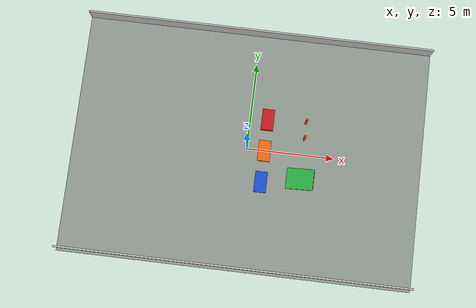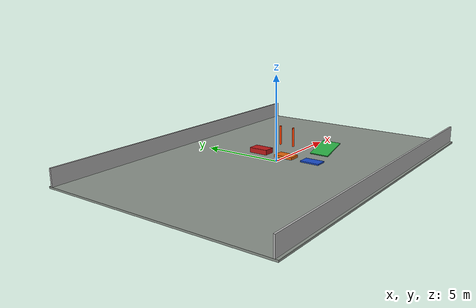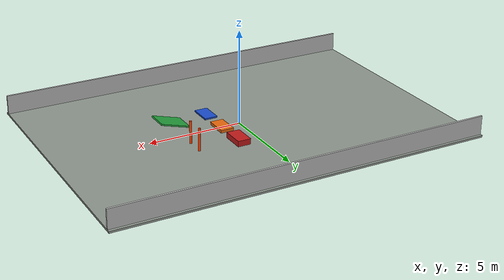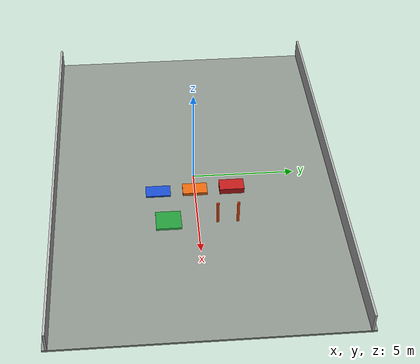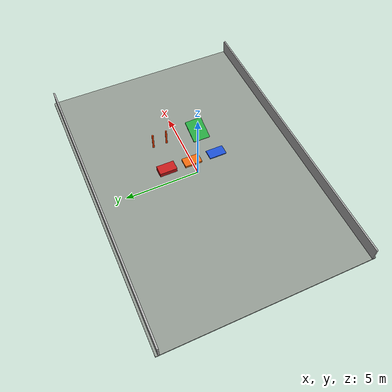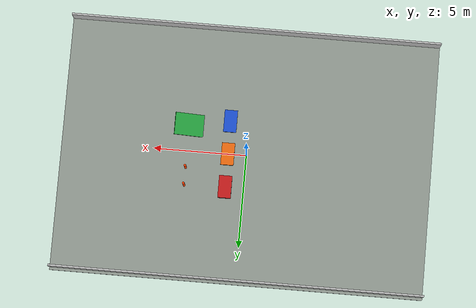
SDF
<?xml version="1.0"?>
<sdf version="1.10">
  <world name="wakula_training">
    <physics name="1ms" type="ignored">
      <max_step_size>0.001</max_step_size>
      <real_time_factor>1.0</real_time_factor>
    </physics>
    <gravity>0 0 -9.81</gravity>
    <plugin filename="gz-sim-physics-system" name="gz::sim::systems::Physics"/>
    <plugin filename="gz-sim-user-commands-system" name="gz::sim::systems::UserCommands"/>
    <plugin filename="gz-sim-scene-broadcaster-system" name="gz::sim::systems::SceneBroadcaster"/>
    <plugin filename="gz-sim-sensors-system" name="gz::sim::systems::Sensors">
      <render_engine>ogre2</render_engine>
    </plugin>
    <plugin filename="gz-sim-imu-system" name="gz::sim::systems::Imu"/>
    <plugin filename="gz-sim-contact-system" name="gz::sim::systems::Contact"/>

    <light type="directional" name="sun">
      <cast_shadows>true</cast_shadows>
      <pose>0 0 10 0 0 0</pose>
      <diffuse>0.8 0.8 0.8 1</diffuse><specular>0.2 0.2 0.2 1</specular>
      <direction>-0.4 0.2 -1</direction>
    </light>

    <model name="ground">
      <static>true</static>
      <link name="ground_link">
        <collision name="collision"><geometry><box><size>20 14 0.1</size></box></geometry></collision>
        <visual name="visual">
          <geometry><box><size>20 14 0.1</size></box></geometry>
          <material><ambient>0.45 0.48 0.45 1</ambient><diffuse>0.55 0.58 0.55 1</diffuse></material>
        </visual>
      </link>
      <pose>0 0 -0.05 0 0 0</pose>
    </model>

    <!-- Three isolated lanes provide repeatable 8, 15 and 30 cm obstacle tests. -->
    <model name="step_08"><static>true</static><pose>1.0 -1.8 0.04 0 0 0</pose><link name="link">
      <collision name="collision"><geometry><box><size>0.70 1.20 0.08</size></box></geometry></collision>
      <visual name="visual"><geometry><box><size>0.70 1.20 0.08</size></box></geometry><material><ambient>0.1 0.3 0.8 1</ambient><diffuse>0.1 0.3 0.8 1</diffuse></material></visual>
    </link></model>
    <model name="step_15"><static>true</static><pose>1.0 0 0.075 0 0 0</pose><link name="link">
      <collision name="collision"><geometry><box><size>0.70 1.20 0.15</size></box></geometry></collision>
      <visual name="visual"><geometry><box><size>0.70 1.20 0.15</size></box></geometry><material><ambient>0.9 0.4 0.05 1</ambient><diffuse>0.9 0.4 0.05 1</diffuse></material></visual>
    </link></model>
    <model name="wall_30"><static>true</static><pose>1.0 1.8 0.15 0 0 0</pose><link name="link">
      <collision name="collision"><geometry><box><size>0.70 1.20 0.30</size></box></geometry></collision>
      <visual name="visual"><geometry><box><size>0.70 1.20 0.30</size></box></geometry><material><ambient>0.75 0.1 0.1 1</ambient><diffuse>0.75 0.1 0.1 1</diffuse></material></visual>
    </link></model>

    <model name="incline"><static>true</static><pose>3.2 -1.4 0.24 0 -0.28 0</pose><link name="link">
      <collision name="collision"><geometry><box><size>1.60 1.20 0.08</size></box></geometry></collision>
      <visual name="visual"><geometry><box><size>1.60 1.20 0.08</size></box></geometry><material><ambient>0.15 0.65 0.25 1</ambient><diffuse>0.15 0.65 0.25 1</diffuse></material></visual>
    </link></model>

    <model name="orange_poles"><static>true</static><pose>3.2 1.4 0 0 0 0</pose>
      <link name="left"><pose>0 0.48 0.60 0 0 0</pose><collision name="c"><geometry><cylinder><radius>0.06</radius><length>1.2</length></cylinder></geometry></collision><visual name="v"><geometry><cylinder><radius>0.06</radius><length>1.2</length></cylinder></geometry><material><ambient>1 0.25 0 1</ambient><diffuse>1 0.25 0 1</diffuse></material></visual></link>
      <link name="right"><pose>0 -0.48 0.60 0 0 0</pose><collision name="c"><geometry><cylinder><radius>0.06</radius><length>1.2</length></cylinder></geometry></collision><visual name="v"><geometry><cylinder><radius>0.06</radius><length>1.2</length></cylinder></geometry><material><ambient>1 0.25 0 1</ambient><diffuse>1 0.25 0 1</diffuse></material></visual></link>
    </model>

    <model name="boundary_north"><static>true</static><pose>0 6.8 0.5 0 0 0</pose><link name="link"><collision name="c"><geometry><box><size>20 0.1 1</size></box></geometry></collision><visual name="v"><geometry><box><size>20 0.1 1</size></box></geometry></visual></link></model>
    <model name="boundary_south"><static>true</static><pose>0 -6.8 0.5 0 0 0</pose><link name="link"><collision name="c"><geometry><box><size>20 0.1 1</size></box></geometry></collision><visual name="v"><geometry><box><size>20 0.1 1</size></box></geometry></visual></link></model>
  </world>
</sdf>
